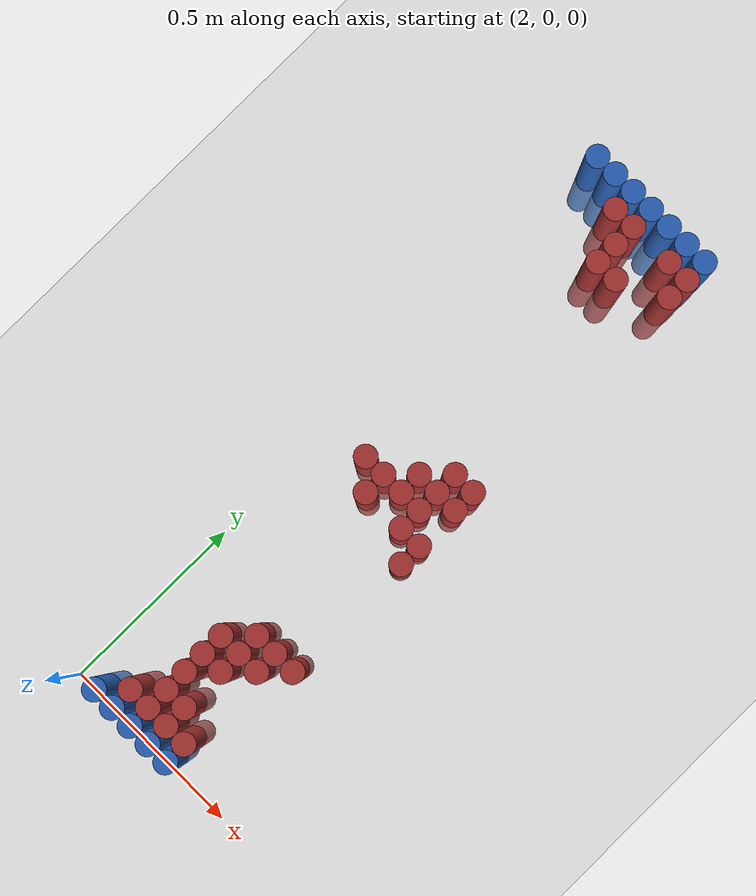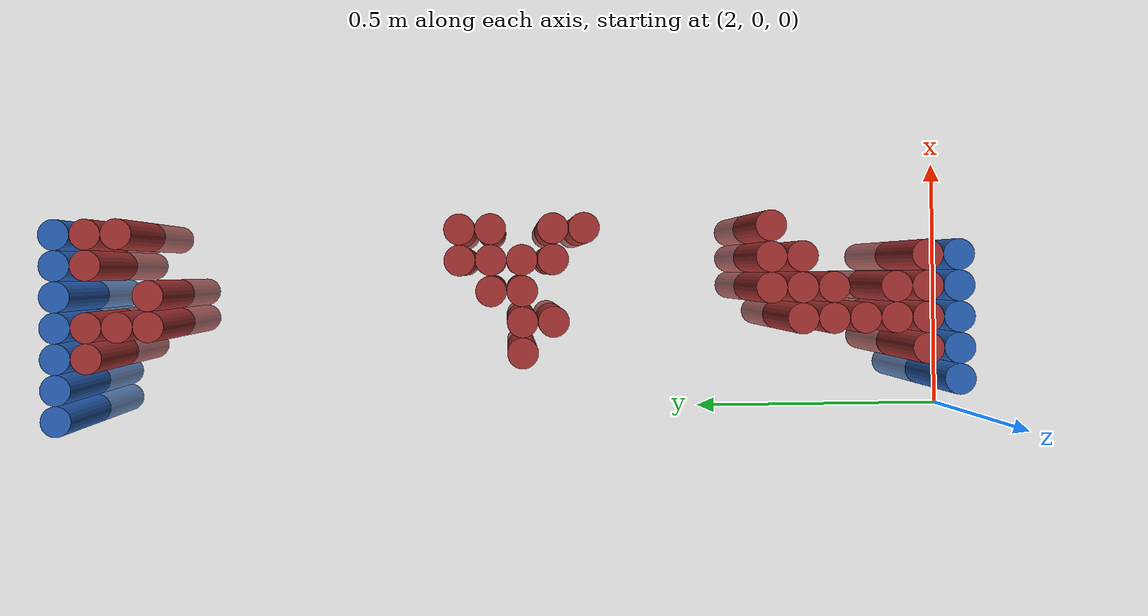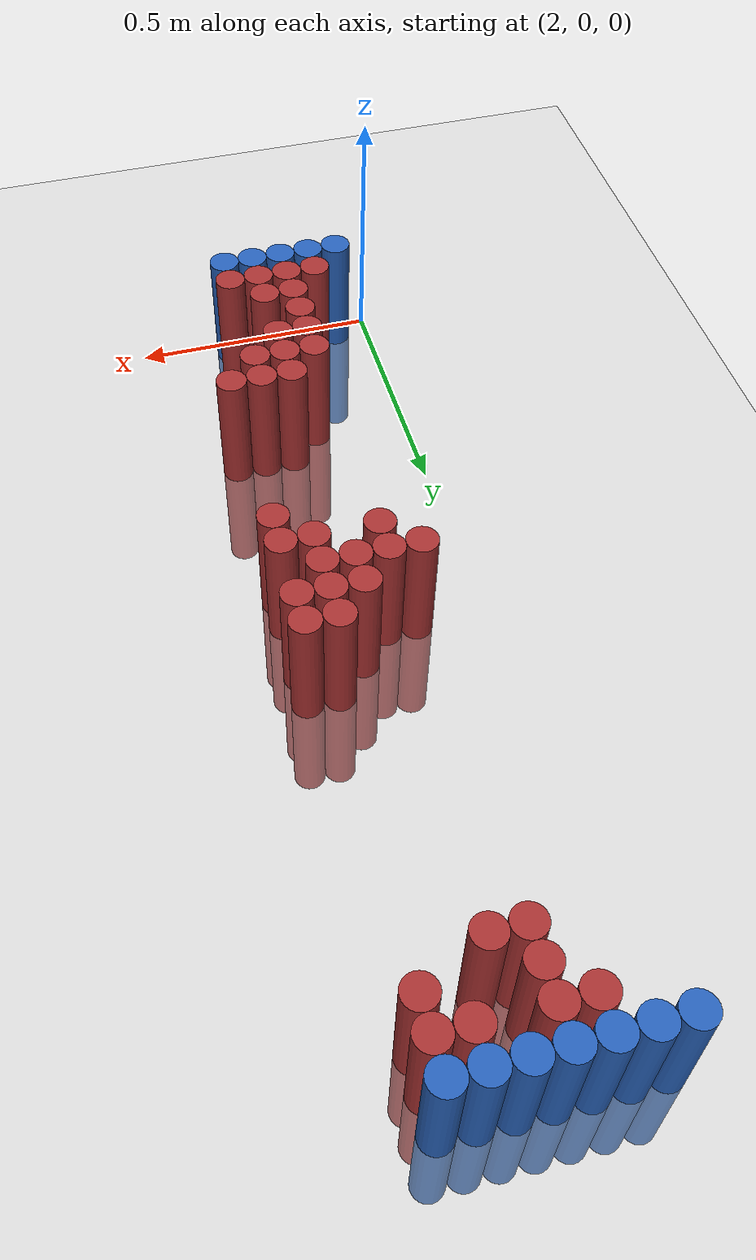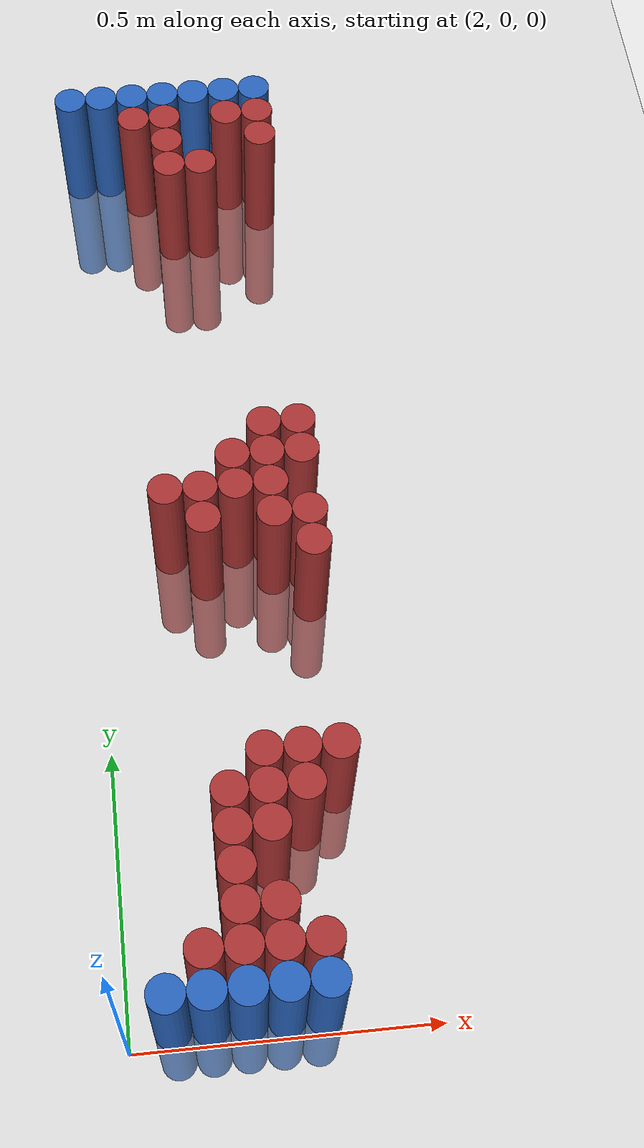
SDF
<sdf version="1.6">
 <world name="default">
  <model name="ground_plane">
   <static>1</static>
   <link name="link">
    <collision name="collision">
     <geometry><plane><normal>0 0 1</normal><size>100 100</size></plane></geometry>
     <surface><friction><ode><mu>100</mu><mu2>50</mu2></ode></friction></surface>
    </collision>
    <visual name="visual">
     <cast_shadows>0</cast_shadows>
     <geometry><plane><normal>0 0 1</normal><size>100 100</size></plane></geometry>
     <material>
      <script><uri>file://media/materials/scripts/gazebo.material</uri><name>Gazebo/Grey</name></script>
     </material>
    </visual>
   </link>
  </model>
  <model name="unit_cylinder_94">
   <static>1</static>
   <pose>2.010000 1.770000 0.000000 0.000000 0.000000 0.000000</pose>
   <link name="link">
    <inertial>
     <mass>1</mass>
     <inertia><ixx>0.145833</ixx><ixy>0</ixy><ixz>0</ixz><iyy>0.145833</iyy><iyz>0</iyz><izz>0.125</izz></inertia>
    </inertial>
    <collision name="collision">
     <geometry><cylinder><radius>0.030000</radius><length>0.5</length></cylinder></geometry>
    </collision>
    <visual name="visual">
     <geometry><cylinder><radius>0.030000</radius><length>0.5</length></cylinder></geometry>
     <material>
      <ambient>0.152000 0.379000 0.720000 1</ambient>
      <diffuse>0.152000 0.379000 0.720000 1</diffuse>
     </material>
     <material>
      <script><name>Gazebo/Grey</name><uri>file://media/materials/scripts/gazebo.material</uri></script>
     </material>
    </visual>
   </link>
  </model>
  <model name="unit_cylinder_95">
   <static>1</static>
   <pose>2.070000 1.770000 0.000000 0.000000 0.000000 0.000000</pose>
   <link name="link">
    <inertial>
     <mass>1</mass>
     <inertia><ixx>0.145833</ixx><ixy>0</ixy><ixz>0</ixz><iyy>0.145833</iyy><iyz>0</iyz><izz>0.125</izz></inertia>
    </inertial>
    <collision name="collision">
     <geometry><cylinder><radius>0.030000</radius><length>0.5</length></cylinder></geometry>
    </collision>
    <visual name="visual">
     <geometry><cylinder><radius>0.030000</radius><length>0.5</length></cylinder></geometry>
     <material>
      <ambient>0.152000 0.379000 0.720000 1</ambient>
      <diffuse>0.152000 0.379000 0.720000 1</diffuse>
     </material>
     <material>
      <script><name>Gazebo/Grey</name><uri>file://media/materials/scripts/gazebo.material</uri></script>
     </material>
    </visual>
   </link>
  </model>
  <model name="unit_cylinder_96">
   <static>1</static>
   <pose>2.130000 1.770000 0.000000 0.000000 0.000000 0.000000</pose>
   <link name="link">
    <inertial>
     <mass>1</mass>
     <inertia><ixx>0.145833</ixx><ixy>0</ixy><ixz>0</ixz><iyy>0.145833</iyy><iyz>0</iyz><izz>0.125</izz></inertia>
    </inertial>
    <collision name="collision">
     <geometry><cylinder><radius>0.030000</radius><length>0.5</length></cylinder></geometry>
    </collision>
    <visual name="visual">
     <geometry><cylinder><radius>0.030000</radius><length>0.5</length></cylinder></geometry>
     <material>
      <ambient>0.152000 0.379000 0.720000 1</ambient>
      <diffuse>0.152000 0.379000 0.720000 1</diffuse>
     </material>
     <material>
      <script><name>Gazebo/Grey</name><uri>file://media/materials/scripts/gazebo.material</uri></script>
     </material>
    </visual>
   </link>
  </model>
  <model name="unit_cylinder_97">
   <static>1</static>
   <pose>2.190000 1.770000 0.000000 0.000000 0.000000 0.000000</pose>
   <link name="link">
    <inertial>
     <mass>1</mass>
     <inertia><ixx>0.145833</ixx><ixy>0</ixy><ixz>0</ixz><iyy>0.145833</iyy><iyz>0</iyz><izz>0.125</izz></inertia>
    </inertial>
    <collision name="collision">
     <geometry><cylinder><radius>0.030000</radius><length>0.5</length></cylinder></geometry>
    </collision>
    <visual name="visual">
     <geometry><cylinder><radius>0.030000</radius><length>0.5</length></cylinder></geometry>
     <material>
      <ambient>0.152000 0.379000 0.720000 1</ambient>
      <diffuse>0.152000 0.379000 0.720000 1</diffuse>
     </material>
     <material>
      <script><name>Gazebo/Grey</name><uri>file://media/materials/scripts/gazebo.material</uri></script>
     </material>
    </visual>
   </link>
  </model>
  <model name="unit_cylinder_98">
   <static>1</static>
   <pose>2.250000 1.770000 0.000000 0.000000 0.000000 0.000000</pose>
   <link name="link">
    <inertial>
     <mass>1</mass>
     <inertia><ixx>0.145833</ixx><ixy>0</ixy><ixz>0</ixz><iyy>0.145833</iyy><iyz>0</iyz><izz>0.125</izz></inertia>
    </inertial>
    <collision name="collision">
     <geometry><cylinder><radius>0.030000</radius><length>0.5</length></cylinder></geometry>
    </collision>
    <visual name="visual">
     <geometry><cylinder><radius>0.030000</radius><length>0.5</length></cylinder></geometry>
     <material>
      <ambient>0.152000 0.379000 0.720000 1</ambient>
      <diffuse>0.152000 0.379000 0.720000 1</diffuse>
     </material>
     <material>
      <script><name>Gazebo/Grey</name><uri>file://media/materials/scripts/gazebo.material</uri></script>
     </material>
    </visual>
   </link>
  </model>
  <model name="unit_cylinder_99">
   <static>1</static>
   <pose>2.310000 1.770000 0.000000 0.000000 0.000000 0.000000</pose>
   <link name="link">
    <inertial>
     <mass>1</mass>
     <inertia><ixx>0.145833</ixx><ixy>0</ixy><ixz>0</ixz><iyy>0.145833</iyy><iyz>0</iyz><izz>0.125</izz></inertia>
    </inertial>
    <collision name="collision">
     <geometry><cylinder><radius>0.030000</radius><length>0.5</length></cylinder></geometry>
    </collision>
    <visual name="visual">
     <geometry><cylinder><radius>0.030000</radius><length>0.5</length></cylinder></geometry>
     <material>
      <ambient>0.152000 0.379000 0.720000 1</ambient>
      <diffuse>0.152000 0.379000 0.720000 1</diffuse>
     </material>
     <material>
      <script><name>Gazebo/Grey</name><uri>file://media/materials/scripts/gazebo.material</uri></script>
     </material>
    </visual>
   </link>
  </model>
  <model name="unit_cylinder_100">
   <static>1</static>
   <pose>2.370000 1.770000 0.000000 0.000000 0.000000 0.000000</pose>
   <link name="link">
    <inertial>
     <mass>1</mass>
     <inertia><ixx>0.145833</ixx><ixy>0</ixy><ixz>0</ixz><iyy>0.145833</iyy><iyz>0</iyz><izz>0.125</izz></inertia>
    </inertial>
    <collision name="collision">
     <geometry><cylinder><radius>0.030000</radius><length>0.5</length></cylinder></geometry>
    </collision>
    <visual name="visual">
     <geometry><cylinder><radius>0.030000</radius><length>0.5</length></cylinder></geometry>
     <material>
      <ambient>0.152000 0.379000 0.720000 1</ambient>
      <diffuse>0.152000 0.379000 0.720000 1</diffuse>
     </material>
     <material>
      <script><name>Gazebo/Grey</name><uri>file://media/materials/scripts/gazebo.material</uri></script>
     </material>
    </visual>
   </link>
  </model>
  <model name="unit_cylinder_125">
   <static>1</static>
   <pose>2.130000 1.710000 0.000000 0.000000 0.000000 0.000000</pose>
   <link name="link">
    <inertial>
     <mass>1</mass>
     <inertia><ixx>0.145833</ixx><ixy>0</ixy><ixz>0</ixz><iyy>0.145833</iyy><iyz>0</iyz><izz>0.125</izz></inertia>
    </inertial>
    <collision name="collision">
     <geometry><cylinder><radius>0.030000</radius><length>0.5</length></cylinder></geometry>
    </collision>
    <visual name="visual">
     <geometry><cylinder><radius>0.030000</radius><length>0.5</length></cylinder></geometry>
     <material>
      <ambient>0.648000 0.192000 0.192000 1</ambient>
      <diffuse>0.648000 0.192000 0.192000 1</diffuse>
     </material>
     <material>
      <script><name>Gazebo/Grey</name><uri>file://media/materials/scripts/gazebo.material</uri></script>
     </material>
    </visual>
   </link>
  </model>
  <model name="unit_cylinder_126">
   <static>1</static>
   <pose>2.190000 1.710000 0.000000 0.000000 0.000000 0.000000</pose>
   <link name="link">
    <inertial>
     <mass>1</mass>
     <inertia><ixx>0.145833</ixx><ixy>0</ixy><ixz>0</ixz><iyy>0.145833</iyy><iyz>0</iyz><izz>0.125</izz></inertia>
    </inertial>
    <collision name="collision">
     <geometry><cylinder><radius>0.030000</radius><length>0.5</length></cylinder></geometry>
    </collision>
    <visual name="visual">
     <geometry><cylinder><radius>0.030000</radius><length>0.5</length></cylinder></geometry>
     <material>
      <ambient>0.648000 0.192000 0.192000 1</ambient>
      <diffuse>0.648000 0.192000 0.192000 1</diffuse>
     </material>
     <material>
      <script><name>Gazebo/Grey</name><uri>file://media/materials/scripts/gazebo.material</uri></script>
     </material>
    </visual>
   </link>
  </model>
  <model name="unit_cylinder_127">
   <static>1</static>
   <pose>2.310000 1.710000 0.000000 0.000000 0.000000 0.000000</pose>
   <link name="link">
    <inertial>
     <mass>1</mass>
     <inertia><ixx>0.145833</ixx><ixy>0</ixy><ixz>0</ixz><iyy>0.145833</iyy><iyz>0</iyz><izz>0.125</izz></inertia>
    </inertial>
    <collision name="collision">
     <geometry><cylinder><radius>0.030000</radius><length>0.5</length></cylinder></geometry>
    </collision>
    <visual name="visual">
     <geometry><cylinder><radius>0.030000</radius><length>0.5</length></cylinder></geometry>
     <material>
      <ambient>0.648000 0.192000 0.192000 1</ambient>
      <diffuse>0.648000 0.192000 0.192000 1</diffuse>
     </material>
     <material>
      <script><name>Gazebo/Grey</name><uri>file://media/materials/scripts/gazebo.material</uri></script>
     </material>
    </visual>
   </link>
  </model>
  <model name="unit_cylinder_128">
   <static>1</static>
   <pose>2.370000 1.710000 0.000000 0.000000 0.000000 0.000000</pose>
   <link name="link">
    <inertial>
     <mass>1</mass>
     <inertia><ixx>0.145833</ixx><ixy>0</ixy><ixz>0</ixz><iyy>0.145833</iyy><iyz>0</iyz><izz>0.125</izz></inertia>
    </inertial>
    <collision name="collision">
     <geometry><cylinder><radius>0.030000</radius><length>0.5</length></cylinder></geometry>
    </collision>
    <visual name="visual">
     <geometry><cylinder><radius>0.030000</radius><length>0.5</length></cylinder></geometry>
     <material>
      <ambient>0.648000 0.192000 0.192000 1</ambient>
      <diffuse>0.648000 0.192000 0.192000 1</diffuse>
     </material>
     <material>
      <script><name>Gazebo/Grey</name><uri>file://media/materials/scripts/gazebo.material</uri></script>
     </material>
    </visual>
   </link>
  </model>
  <model name="unit_cylinder_135">
   <static>1</static>
   <pose>2.190000 1.650000 0.000000 0.000000 0.000000 0.000000</pose>
   <link name="link">
    <inertial>
     <mass>1</mass>
     <inertia><ixx>0.145833</ixx><ixy>0</ixy><ixz>0</ixz><iyy>0.145833</iyy><iyz>0</iyz><izz>0.125</izz></inertia>
    </inertial>
    <collision name="collision">
     <geometry><cylinder><radius>0.030000</radius><length>0.5</length></cylinder></geometry>
    </collision>
    <visual name="visual">
     <geometry><cylinder><radius>0.030000</radius><length>0.5</length></cylinder></geometry>
     <material>
      <ambient>0.648000 0.192000 0.192000 1</ambient>
      <diffuse>0.648000 0.192000 0.192000 1</diffuse>
     </material>
     <material>
      <script><name>Gazebo/Grey</name><uri>file://media/materials/scripts/gazebo.material</uri></script>
     </material>
    </visual>
   </link>
  </model>
  <model name="unit_cylinder_136">
   <static>1</static>
   <pose>2.370000 1.650000 0.000000 0.000000 0.000000 0.000000</pose>
   <link name="link">
    <inertial>
     <mass>1</mass>
     <inertia><ixx>0.145833</ixx><ixy>0</ixy><ixz>0</ixz><iyy>0.145833</iyy><iyz>0</iyz><izz>0.125</izz></inertia>
    </inertial>
    <collision name="collision">
     <geometry><cylinder><radius>0.030000</radius><length>0.5</length></cylinder></geometry>
    </collision>
    <visual name="visual">
     <geometry><cylinder><radius>0.030000</radius><length>0.5</length></cylinder></geometry>
     <material>
      <ambient>0.648000 0.192000 0.192000 1</ambient>
      <diffuse>0.648000 0.192000 0.192000 1</diffuse>
     </material>
     <material>
      <script><name>Gazebo/Grey</name><uri>file://media/materials/scripts/gazebo.material</uri></script>
     </material>
    </visual>
   </link>
  </model>
  <model name="unit_cylinder_150">
   <static>1</static>
   <pose>2.190000 1.590000 0.000000 0.000000 0.000000 0.000000</pose>
   <link name="link">
    <inertial>
     <mass>1</mass>
     <inertia><ixx>0.145833</ixx><ixy>0</ixy><ixz>0</ixz><iyy>0.145833</iyy><iyz>0</iyz><izz>0.125</izz></inertia>
    </inertial>
    <collision name="collision">
     <geometry><cylinder><radius>0.030000</radius><length>0.5</length></cylinder></geometry>
    </collision>
    <visual name="visual">
     <geometry><cylinder><radius>0.030000</radius><length>0.5</length></cylinder></geometry>
     <material>
      <ambient>0.648000 0.192000 0.192000 1</ambient>
      <diffuse>0.648000 0.192000 0.192000 1</diffuse>
     </material>
     <material>
      <script><name>Gazebo/Grey</name><uri>file://media/materials/scripts/gazebo.material</uri></script>
     </material>
    </visual>
   </link>
  </model>
  <model name="unit_cylinder_151">
   <static>1</static>
   <pose>2.250000 1.590000 0.000000 0.000000 0.000000 0.000000</pose>
   <link name="link">
    <inertial>
     <mass>1</mass>
     <inertia><ixx>0.145833</ixx><ixy>0</ixy><ixz>0</ixz><iyy>0.145833</iyy><iyz>0</iyz><izz>0.125</izz></inertia>
    </inertial>
    <collision name="collision">
     <geometry><cylinder><radius>0.030000</radius><length>0.5</length></cylinder></geometry>
    </collision>
    <visual name="visual">
     <geometry><cylinder><radius>0.030000</radius><length>0.5</length></cylinder></geometry>
     <material>
      <ambient>0.648000 0.192000 0.192000 1</ambient>
      <diffuse>0.648000 0.192000 0.192000 1</diffuse>
     </material>
     <material>
      <script><name>Gazebo/Grey</name><uri>file://media/materials/scripts/gazebo.material</uri></script>
     </material>
    </visual>
   </link>
  </model>
  <model name="unit_cylinder_217">
   <static>1</static>
   <pose>2.310000 0.990000 0.000000 0.000000 0.000000 0.000000</pose>
   <link name="link">
    <inertial>
     <mass>1</mass>
     <inertia><ixx>0.145833</ixx><ixy>0</ixy><ixz>0</ixz><iyy>0.145833</iyy><iyz>0</iyz><izz>0.125</izz></inertia>
    </inertial>
    <collision name="collision">
     <geometry><cylinder><radius>0.030000</radius><length>0.5</length></cylinder></geometry>
    </collision>
    <visual name="visual">
     <geometry><cylinder><radius>0.030000</radius><length>0.5</length></cylinder></geometry>
     <material>
      <ambient>0.648000 0.192000 0.192000 1</ambient>
      <diffuse>0.648000 0.192000 0.192000 1</diffuse>
     </material>
     <material>
      <script><name>Gazebo/Grey</name><uri>file://media/materials/scripts/gazebo.material</uri></script>
     </material>
    </visual>
   </link>
  </model>
  <model name="unit_cylinder_218">
   <static>1</static>
   <pose>2.370000 0.990000 0.000000 0.000000 0.000000 0.000000</pose>
   <link name="link">
    <inertial>
     <mass>1</mass>
     <inertia><ixx>0.145833</ixx><ixy>0</ixy><ixz>0</ixz><iyy>0.145833</iyy><iyz>0</iyz><izz>0.125</izz></inertia>
    </inertial>
    <collision name="collision">
     <geometry><cylinder><radius>0.030000</radius><length>0.5</length></cylinder></geometry>
    </collision>
    <visual name="visual">
     <geometry><cylinder><radius>0.030000</radius><length>0.5</length></cylinder></geometry>
     <material>
      <ambient>0.648000 0.192000 0.192000 1</ambient>
      <diffuse>0.648000 0.192000 0.192000 1</diffuse>
     </material>
     <material>
      <script><name>Gazebo/Grey</name><uri>file://media/materials/scripts/gazebo.material</uri></script>
     </material>
    </visual>
   </link>
  </model>
  <model name="unit_cylinder_222">
   <static>1</static>
   <pose>2.250000 0.930000 0.000000 0.000000 0.000000 0.000000</pose>
   <link name="link">
    <inertial>
     <mass>1</mass>
     <inertia><ixx>0.145833</ixx><ixy>0</ixy><ixz>0</ixz><iyy>0.145833</iyy><iyz>0</iyz><izz>0.125</izz></inertia>
    </inertial>
    <collision name="collision">
     <geometry><cylinder><radius>0.030000</radius><length>0.5</length></cylinder></geometry>
    </collision>
    <visual name="visual">
     <geometry><cylinder><radius>0.030000</radius><length>0.5</length></cylinder></geometry>
     <material>
      <ambient>0.648000 0.192000 0.192000 1</ambient>
      <diffuse>0.648000 0.192000 0.192000 1</diffuse>
     </material>
     <material>
      <script><name>Gazebo/Grey</name><uri>file://media/materials/scripts/gazebo.material</uri></script>
     </material>
    </visual>
   </link>
  </model>
  <model name="unit_cylinder_223">
   <static>1</static>
   <pose>2.310000 0.930000 0.000000 0.000000 0.000000 0.000000</pose>
   <link name="link">
    <inertial>
     <mass>1</mass>
     <inertia><ixx>0.145833</ixx><ixy>0</ixy><ixz>0</ixz><iyy>0.145833</iyy><iyz>0</iyz><izz>0.125</izz></inertia>
    </inertial>
    <collision name="collision">
     <geometry><cylinder><radius>0.030000</radius><length>0.5</length></cylinder></geometry>
    </collision>
    <visual name="visual">
     <geometry><cylinder><radius>0.030000</radius><length>0.5</length></cylinder></geometry>
     <material>
      <ambient>0.648000 0.192000 0.192000 1</ambient>
      <diffuse>0.648000 0.192000 0.192000 1</diffuse>
     </material>
     <material>
      <script><name>Gazebo/Grey</name><uri>file://media/materials/scripts/gazebo.material</uri></script>
     </material>
    </visual>
   </link>
  </model>
  <model name="unit_cylinder_224">
   <static>1</static>
   <pose>2.370000 0.930000 0.000000 0.000000 0.000000 0.000000</pose>
   <link name="link">
    <inertial>
     <mass>1</mass>
     <inertia><ixx>0.145833</ixx><ixy>0</ixy><ixz>0</ixz><iyy>0.145833</iyy><iyz>0</iyz><izz>0.125</izz></inertia>
    </inertial>
    <collision name="collision">
     <geometry><cylinder><radius>0.030000</radius><length>0.5</length></cylinder></geometry>
    </collision>
    <visual name="visual">
     <geometry><cylinder><radius>0.030000</radius><length>0.5</length></cylinder></geometry>
     <material>
      <ambient>0.648000 0.192000 0.192000 1</ambient>
      <diffuse>0.648000 0.192000 0.192000 1</diffuse>
     </material>
     <material>
      <script><name>Gazebo/Grey</name><uri>file://media/materials/scripts/gazebo.material</uri></script>
     </material>
    </visual>
   </link>
  </model>
  <model name="unit_cylinder_230">
   <static>1</static>
   <pose>2.130000 0.870000 0.000000 0.000000 0.000000 0.000000</pose>
   <link name="link">
    <inertial>
     <mass>1</mass>
     <inertia><ixx>0.145833</ixx><ixy>0</ixy><ixz>0</ixz><iyy>0.145833</iyy><iyz>0</iyz><izz>0.125</izz></inertia>
    </inertial>
    <collision name="collision">
     <geometry><cylinder><radius>0.030000</radius><length>0.5</length></cylinder></geometry>
    </collision>
    <visual name="visual">
     <geometry><cylinder><radius>0.030000</radius><length>0.5</length></cylinder></geometry>
     <material>
      <ambient>0.648000 0.192000 0.192000 1</ambient>
      <diffuse>0.648000 0.192000 0.192000 1</diffuse>
     </material>
     <material>
      <script><name>Gazebo/Grey</name><uri>file://media/materials/scripts/gazebo.material</uri></script>
     </material>
    </visual>
   </link>
  </model>
  <model name="unit_cylinder_231">
   <static>1</static>
   <pose>2.190000 0.870000 0.000000 0.000000 0.000000 0.000000</pose>
   <link name="link">
    <inertial>
     <mass>1</mass>
     <inertia><ixx>0.145833</ixx><ixy>0</ixy><ixz>0</ixz><iyy>0.145833</iyy><iyz>0</iyz><izz>0.125</izz></inertia>
    </inertial>
    <collision name="collision">
     <geometry><cylinder><radius>0.030000</radius><length>0.5</length></cylinder></geometry>
    </collision>
    <visual name="visual">
     <geometry><cylinder><radius>0.030000</radius><length>0.5</length></cylinder></geometry>
     <material>
      <ambient>0.648000 0.192000 0.192000 1</ambient>
      <diffuse>0.648000 0.192000 0.192000 1</diffuse>
     </material>
     <material>
      <script><name>Gazebo/Grey</name><uri>file://media/materials/scripts/gazebo.material</uri></script>
     </material>
    </visual>
   </link>
  </model>
  <model name="unit_cylinder_232">
   <static>1</static>
   <pose>2.250000 0.870000 0.000000 0.000000 0.000000 0.000000</pose>
   <link name="link">
    <inertial>
     <mass>1</mass>
     <inertia><ixx>0.145833</ixx><ixy>0</ixy><ixz>0</ixz><iyy>0.145833</iyy><iyz>0</iyz><izz>0.125</izz></inertia>
    </inertial>
    <collision name="collision">
     <geometry><cylinder><radius>0.030000</radius><length>0.5</length></cylinder></geometry>
    </collision>
    <visual name="visual">
     <geometry><cylinder><radius>0.030000</radius><length>0.5</length></cylinder></geometry>
     <material>
      <ambient>0.648000 0.192000 0.192000 1</ambient>
      <diffuse>0.648000 0.192000 0.192000 1</diffuse>
     </material>
     <material>
      <script><name>Gazebo/Grey</name><uri>file://media/materials/scripts/gazebo.material</uri></script>
     </material>
    </visual>
   </link>
  </model>
  <model name="unit_cylinder_233">
   <static>1</static>
   <pose>2.310000 0.870000 0.000000 0.000000 0.000000 0.000000</pose>
   <link name="link">
    <inertial>
     <mass>1</mass>
     <inertia><ixx>0.145833</ixx><ixy>0</ixy><ixz>0</ixz><iyy>0.145833</iyy><iyz>0</iyz><izz>0.125</izz></inertia>
    </inertial>
    <collision name="collision">
     <geometry><cylinder><radius>0.030000</radius><length>0.5</length></cylinder></geometry>
    </collision>
    <visual name="visual">
     <geometry><cylinder><radius>0.030000</radius><length>0.5</length></cylinder></geometry>
     <material>
      <ambient>0.648000 0.192000 0.192000 1</ambient>
      <diffuse>0.648000 0.192000 0.192000 1</diffuse>
     </material>
     <material>
      <script><name>Gazebo/Grey</name><uri>file://media/materials/scripts/gazebo.material</uri></script>
     </material>
    </visual>
   </link>
  </model>
  <model name="unit_cylinder_237">
   <static>1</static>
   <pose>2.190000 0.810000 0.000000 0.000000 0.000000 0.000000</pose>
   <link name="link">
    <inertial>
     <mass>1</mass>
     <inertia><ixx>0.145833</ixx><ixy>0</ixy><ixz>0</ixz><iyy>0.145833</iyy><iyz>0</iyz><izz>0.125</izz></inertia>
    </inertial>
    <collision name="collision">
     <geometry><cylinder><radius>0.030000</radius><length>0.5</length></cylinder></geometry>
    </collision>
    <visual name="visual">
     <geometry><cylinder><radius>0.030000</radius><length>0.5</length></cylinder></geometry>
     <material>
      <ambient>0.648000 0.192000 0.192000 1</ambient>
      <diffuse>0.648000 0.192000 0.192000 1</diffuse>
     </material>
     <material>
      <script><name>Gazebo/Grey</name><uri>file://media/materials/scripts/gazebo.material</uri></script>
     </material>
    </visual>
   </link>
  </model>
  <model name="unit_cylinder_238">
   <static>1</static>
   <pose>2.310000 0.810000 0.000000 0.000000 0.000000 0.000000</pose>
   <link name="link">
    <inertial>
     <mass>1</mass>
     <inertia><ixx>0.145833</ixx><ixy>0</ixy><ixz>0</ixz><iyy>0.145833</iyy><iyz>0</iyz><izz>0.125</izz></inertia>
    </inertial>
    <collision name="collision">
     <geometry><cylinder><radius>0.030000</radius><length>0.5</length></cylinder></geometry>
    </collision>
    <visual name="visual">
     <geometry><cylinder><radius>0.030000</radius><length>0.5</length></cylinder></geometry>
     <material>
      <ambient>0.648000 0.192000 0.192000 1</ambient>
      <diffuse>0.648000 0.192000 0.192000 1</diffuse>
     </material>
     <material>
      <script><name>Gazebo/Grey</name><uri>file://media/materials/scripts/gazebo.material</uri></script>
     </material>
    </visual>
   </link>
  </model>
  <model name="unit_cylinder_239">
   <static>1</static>
   <pose>2.370000 0.810000 0.000000 0.000000 0.000000 0.000000</pose>
   <link name="link">
    <inertial>
     <mass>1</mass>
     <inertia><ixx>0.145833</ixx><ixy>0</ixy><ixz>0</ixz><iyy>0.145833</iyy><iyz>0</iyz><izz>0.125</izz></inertia>
    </inertial>
    <collision name="collision">
     <geometry><cylinder><radius>0.030000</radius><length>0.5</length></cylinder></geometry>
    </collision>
    <visual name="visual">
     <geometry><cylinder><radius>0.030000</radius><length>0.5</length></cylinder></geometry>
     <material>
      <ambient>0.648000 0.192000 0.192000 1</ambient>
      <diffuse>0.648000 0.192000 0.192000 1</diffuse>
     </material>
     <material>
      <script><name>Gazebo/Grey</name><uri>file://media/materials/scripts/gazebo.material</uri></script>
     </material>
    </visual>
   </link>
  </model>
  <model name="unit_cylinder_242">
   <static>1</static>
   <pose>2.370000 0.750000 0.000000 0.000000 0.000000 0.000000</pose>
   <link name="link">
    <inertial>
     <mass>1</mass>
     <inertia><ixx>0.145833</ixx><ixy>0</ixy><ixz>0</ixz><iyy>0.145833</iyy><iyz>0</iyz><izz>0.125</izz></inertia>
    </inertial>
    <collision name="collision">
     <geometry><cylinder><radius>0.030000</radius><length>0.5</length></cylinder></geometry>
    </collision>
    <visual name="visual">
     <geometry><cylinder><radius>0.030000</radius><length>0.5</length></cylinder></geometry>
     <material>
      <ambient>0.648000 0.192000 0.192000 1</ambient>
      <diffuse>0.648000 0.192000 0.192000 1</diffuse>
     </material>
     <material>
      <script><name>Gazebo/Grey</name><uri>file://media/materials/scripts/gazebo.material</uri></script>
     </material>
    </visual>
   </link>
  </model>
  <model name="unit_cylinder_263">
   <static>1</static>
   <pose>2.250000 0.390000 0.000000 0.000000 0.000000 0.000000</pose>
   <link name="link">
    <inertial>
     <mass>1</mass>
     <inertia><ixx>0.145833</ixx><ixy>0</ixy><ixz>0</ixz><iyy>0.145833</iyy><iyz>0</iyz><izz>0.125</izz></inertia>
    </inertial>
    <collision name="collision">
     <geometry><cylinder><radius>0.030000</radius><length>0.5</length></cylinder></geometry>
    </collision>
    <visual name="visual">
     <geometry><cylinder><radius>0.030000</radius><length>0.5</length></cylinder></geometry>
     <material>
      <ambient>0.648000 0.192000 0.192000 1</ambient>
      <diffuse>0.648000 0.192000 0.192000 1</diffuse>
     </material>
     <material>
      <script><name>Gazebo/Grey</name><uri>file://media/materials/scripts/gazebo.material</uri></script>
     </material>
    </visual>
   </link>
  </model>
  <model name="unit_cylinder_264">
   <static>1</static>
   <pose>2.310000 0.390000 0.000000 0.000000 0.000000 0.000000</pose>
   <link name="link">
    <inertial>
     <mass>1</mass>
     <inertia><ixx>0.145833</ixx><ixy>0</ixy><ixz>0</ixz><iyy>0.145833</iyy><iyz>0</iyz><izz>0.125</izz></inertia>
    </inertial>
    <collision name="collision">
     <geometry><cylinder><radius>0.030000</radius><length>0.5</length></cylinder></geometry>
    </collision>
    <visual name="visual">
     <geometry><cylinder><radius>0.030000</radius><length>0.5</length></cylinder></geometry>
     <material>
      <ambient>0.648000 0.192000 0.192000 1</ambient>
      <diffuse>0.648000 0.192000 0.192000 1</diffuse>
     </material>
     <material>
      <script><name>Gazebo/Grey</name><uri>file://media/materials/scripts/gazebo.material</uri></script>
     </material>
    </visual>
   </link>
  </model>
  <model name="unit_cylinder_265">
   <static>1</static>
   <pose>2.370000 0.390000 0.000000 0.000000 0.000000 0.000000</pose>
   <link name="link">
    <inertial>
     <mass>1</mass>
     <inertia><ixx>0.145833</ixx><ixy>0</ixy><ixz>0</ixz><iyy>0.145833</iyy><iyz>0</iyz><izz>0.125</izz></inertia>
    </inertial>
    <collision name="collision">
     <geometry><cylinder><radius>0.030000</radius><length>0.5</length></cylinder></geometry>
    </collision>
    <visual name="visual">
     <geometry><cylinder><radius>0.030000</radius><length>0.5</length></cylinder></geometry>
     <material>
      <ambient>0.648000 0.192000 0.192000 1</ambient>
      <diffuse>0.648000 0.192000 0.192000 1</diffuse>
     </material>
     <material>
      <script><name>Gazebo/Grey</name><uri>file://media/materials/scripts/gazebo.material</uri></script>
     </material>
    </visual>
   </link>
  </model>
  <model name="unit_cylinder_269">
   <static>1</static>
   <pose>2.190000 0.330000 0.000000 0.000000 0.000000 0.000000</pose>
   <link name="link">
    <inertial>
     <mass>1</mass>
     <inertia><ixx>0.145833</ixx><ixy>0</ixy><ixz>0</ixz><iyy>0.145833</iyy><iyz>0</iyz><izz>0.125</izz></inertia>
    </inertial>
    <collision name="collision">
     <geometry><cylinder><radius>0.030000</radius><length>0.5</length></cylinder></geometry>
    </collision>
    <visual name="visual">
     <geometry><cylinder><radius>0.030000</radius><length>0.5</length></cylinder></geometry>
     <material>
      <ambient>0.648000 0.192000 0.192000 1</ambient>
      <diffuse>0.648000 0.192000 0.192000 1</diffuse>
     </material>
     <material>
      <script><name>Gazebo/Grey</name><uri>file://media/materials/scripts/gazebo.material</uri></script>
     </material>
    </visual>
   </link>
  </model>
  <model name="unit_cylinder_270">
   <static>1</static>
   <pose>2.250000 0.330000 0.000000 0.000000 0.000000 0.000000</pose>
   <link name="link">
    <inertial>
     <mass>1</mass>
     <inertia><ixx>0.145833</ixx><ixy>0</ixy><ixz>0</ixz><iyy>0.145833</iyy><iyz>0</iyz><izz>0.125</izz></inertia>
    </inertial>
    <collision name="collision">
     <geometry><cylinder><radius>0.030000</radius><length>0.5</length></cylinder></geometry>
    </collision>
    <visual name="visual">
     <geometry><cylinder><radius>0.030000</radius><length>0.5</length></cylinder></geometry>
     <material>
      <ambient>0.648000 0.192000 0.192000 1</ambient>
      <diffuse>0.648000 0.192000 0.192000 1</diffuse>
     </material>
     <material>
      <script><name>Gazebo/Grey</name><uri>file://media/materials/scripts/gazebo.material</uri></script>
     </material>
    </visual>
   </link>
  </model>
  <model name="unit_cylinder_271">
   <static>1</static>
   <pose>2.310000 0.330000 0.000000 0.000000 0.000000 0.000000</pose>
   <link name="link">
    <inertial>
     <mass>1</mass>
     <inertia><ixx>0.145833</ixx><ixy>0</ixy><ixz>0</ixz><iyy>0.145833</iyy><iyz>0</iyz><izz>0.125</izz></inertia>
    </inertial>
    <collision name="collision">
     <geometry><cylinder><radius>0.030000</radius><length>0.5</length></cylinder></geometry>
    </collision>
    <visual name="visual">
     <geometry><cylinder><radius>0.030000</radius><length>0.5</length></cylinder></geometry>
     <material>
      <ambient>0.648000 0.192000 0.192000 1</ambient>
      <diffuse>0.648000 0.192000 0.192000 1</diffuse>
     </material>
     <material>
      <script><name>Gazebo/Grey</name><uri>file://media/materials/scripts/gazebo.material</uri></script>
     </material>
    </visual>
   </link>
  </model>
  <model name="unit_cylinder_277">
   <static>1</static>
   <pose>2.190000 0.270000 0.000000 0.000000 0.000000 0.000000</pose>
   <link name="link">
    <inertial>
     <mass>1</mass>
     <inertia><ixx>0.145833</ixx><ixy>0</ixy><ixz>0</ixz><iyy>0.145833</iyy><iyz>0</iyz><izz>0.125</izz></inertia>
    </inertial>
    <collision name="collision">
     <geometry><cylinder><radius>0.030000</radius><length>0.5</length></cylinder></geometry>
    </collision>
    <visual name="visual">
     <geometry><cylinder><radius>0.030000</radius><length>0.5</length></cylinder></geometry>
     <material>
      <ambient>0.648000 0.192000 0.192000 1</ambient>
      <diffuse>0.648000 0.192000 0.192000 1</diffuse>
     </material>
     <material>
      <script><name>Gazebo/Grey</name><uri>file://media/materials/scripts/gazebo.material</uri></script>
     </material>
    </visual>
   </link>
  </model>
  <model name="unit_cylinder_278">
   <static>1</static>
   <pose>2.250000 0.270000 0.000000 0.000000 0.000000 0.000000</pose>
   <link name="link">
    <inertial>
     <mass>1</mass>
     <inertia><ixx>0.145833</ixx><ixy>0</ixy><ixz>0</ixz><iyy>0.145833</iyy><iyz>0</iyz><izz>0.125</izz></inertia>
    </inertial>
    <collision name="collision">
     <geometry><cylinder><radius>0.030000</radius><length>0.5</length></cylinder></geometry>
    </collision>
    <visual name="visual">
     <geometry><cylinder><radius>0.030000</radius><length>0.5</length></cylinder></geometry>
     <material>
      <ambient>0.648000 0.192000 0.192000 1</ambient>
      <diffuse>0.648000 0.192000 0.192000 1</diffuse>
     </material>
     <material>
      <script><name>Gazebo/Grey</name><uri>file://media/materials/scripts/gazebo.material</uri></script>
     </material>
    </visual>
   </link>
  </model>
  <model name="unit_cylinder_280">
   <static>1</static>
   <pose>2.190000 0.210000 0.000000 0.000000 0.000000 0.000000</pose>
   <link name="link">
    <inertial>
     <mass>1</mass>
     <inertia><ixx>0.145833</ixx><ixy>0</ixy><ixz>0</ixz><iyy>0.145833</iyy><iyz>0</iyz><izz>0.125</izz></inertia>
    </inertial>
    <collision name="collision">
     <geometry><cylinder><radius>0.030000</radius><length>0.5</length></cylinder></geometry>
    </collision>
    <visual name="visual">
     <geometry><cylinder><radius>0.030000</radius><length>0.5</length></cylinder></geometry>
     <material>
      <ambient>0.648000 0.192000 0.192000 1</ambient>
      <diffuse>0.648000 0.192000 0.192000 1</diffuse>
     </material>
     <material>
      <script><name>Gazebo/Grey</name><uri>file://media/materials/scripts/gazebo.material</uri></script>
     </material>
    </visual>
   </link>
  </model>
  <model name="unit_cylinder_283">
   <static>1</static>
   <pose>2.190000 0.150000 0.000000 0.000000 0.000000 0.000000</pose>
   <link name="link">
    <inertial>
     <mass>1</mass>
     <inertia><ixx>0.145833</ixx><ixy>0</ixy><ixz>0</ixz><iyy>0.145833</iyy><iyz>0</iyz><izz>0.125</izz></inertia>
    </inertial>
    <collision name="collision">
     <geometry><cylinder><radius>0.030000</radius><length>0.5</length></cylinder></geometry>
    </collision>
    <visual name="visual">
     <geometry><cylinder><radius>0.030000</radius><length>0.5</length></cylinder></geometry>
     <material>
      <ambient>0.648000 0.192000 0.192000 1</ambient>
      <diffuse>0.648000 0.192000 0.192000 1</diffuse>
     </material>
     <material>
      <script><name>Gazebo/Grey</name><uri>file://media/materials/scripts/gazebo.material</uri></script>
     </material>
    </visual>
   </link>
  </model>
  <model name="unit_cylinder_284">
   <static>1</static>
   <pose>2.250000 0.150000 0.000000 0.000000 0.000000 0.000000</pose>
   <link name="link">
    <inertial>
     <mass>1</mass>
     <inertia><ixx>0.145833</ixx><ixy>0</ixy><ixz>0</ixz><iyy>0.145833</iyy><iyz>0</iyz><izz>0.125</izz></inertia>
    </inertial>
    <collision name="collision">
     <geometry><cylinder><radius>0.030000</radius><length>0.5</length></cylinder></geometry>
    </collision>
    <visual name="visual">
     <geometry><cylinder><radius>0.030000</radius><length>0.5</length></cylinder></geometry>
     <material>
      <ambient>0.648000 0.192000 0.192000 1</ambient>
      <diffuse>0.648000 0.192000 0.192000 1</diffuse>
     </material>
     <material>
      <script><name>Gazebo/Grey</name><uri>file://media/materials/scripts/gazebo.material</uri></script>
     </material>
    </visual>
   </link>
  </model>
  <model name="unit_cylinder_288">
   <static>1</static>
   <pose>2.130000 0.090000 0.000000 0.000000 0.000000 0.000000</pose>
   <link name="link">
    <inertial>
     <mass>1</mass>
     <inertia><ixx>0.145833</ixx><ixy>0</ixy><ixz>0</ixz><iyy>0.145833</iyy><iyz>0</iyz><izz>0.125</izz></inertia>
    </inertial>
    <collision name="collision">
     <geometry><cylinder><radius>0.030000</radius><length>0.5</length></cylinder></geometry>
    </collision>
    <visual name="visual">
     <geometry><cylinder><radius>0.030000</radius><length>0.5</length></cylinder></geometry>
     <material>
      <ambient>0.648000 0.192000 0.192000 1</ambient>
      <diffuse>0.648000 0.192000 0.192000 1</diffuse>
     </material>
     <material>
      <script><name>Gazebo/Grey</name><uri>file://media/materials/scripts/gazebo.material</uri></script>
     </material>
    </visual>
   </link>
  </model>
  <model name="unit_cylinder_289">
   <static>1</static>
   <pose>2.190000 0.090000 0.000000 0.000000 0.000000 0.000000</pose>
   <link name="link">
    <inertial>
     <mass>1</mass>
     <inertia><ixx>0.145833</ixx><ixy>0</ixy><ixz>0</ixz><iyy>0.145833</iyy><iyz>0</iyz><izz>0.125</izz></inertia>
    </inertial>
    <collision name="collision">
     <geometry><cylinder><radius>0.030000</radius><length>0.5</length></cylinder></geometry>
    </collision>
    <visual name="visual">
     <geometry><cylinder><radius>0.030000</radius><length>0.5</length></cylinder></geometry>
     <material>
      <ambient>0.648000 0.192000 0.192000 1</ambient>
      <diffuse>0.648000 0.192000 0.192000 1</diffuse>
     </material>
     <material>
      <script><name>Gazebo/Grey</name><uri>file://media/materials/scripts/gazebo.material</uri></script>
     </material>
    </visual>
   </link>
  </model>
  <model name="unit_cylinder_290">
   <static>1</static>
   <pose>2.250000 0.090000 0.000000 0.000000 0.000000 0.000000</pose>
   <link name="link">
    <inertial>
     <mass>1</mass>
     <inertia><ixx>0.145833</ixx><ixy>0</ixy><ixz>0</ixz><iyy>0.145833</iyy><iyz>0</iyz><izz>0.125</izz></inertia>
    </inertial>
    <collision name="collision">
     <geometry><cylinder><radius>0.030000</radius><length>0.5</length></cylinder></geometry>
    </collision>
    <visual name="visual">
     <geometry><cylinder><radius>0.030000</radius><length>0.5</length></cylinder></geometry>
     <material>
      <ambient>0.648000 0.192000 0.192000 1</ambient>
      <diffuse>0.648000 0.192000 0.192000 1</diffuse>
     </material>
     <material>
      <script><name>Gazebo/Grey</name><uri>file://media/materials/scripts/gazebo.material</uri></script>
     </material>
    </visual>
   </link>
  </model>
  <model name="unit_cylinder_291">
   <static>1</static>
   <pose>2.310000 0.090000 0.000000 0.000000 0.000000 0.000000</pose>
   <link name="link">
    <inertial>
     <mass>1</mass>
     <inertia><ixx>0.145833</ixx><ixy>0</ixy><ixz>0</ixz><iyy>0.145833</iyy><iyz>0</iyz><izz>0.125</izz></inertia>
    </inertial>
    <collision name="collision">
     <geometry><cylinder><radius>0.030000</radius><length>0.5</length></cylinder></geometry>
    </collision>
    <visual name="visual">
     <geometry><cylinder><radius>0.030000</radius><length>0.5</length></cylinder></geometry>
     <material>
      <ambient>0.648000 0.192000 0.192000 1</ambient>
      <diffuse>0.648000 0.192000 0.192000 1</diffuse>
     </material>
     <material>
      <script><name>Gazebo/Grey</name><uri>file://media/materials/scripts/gazebo.material</uri></script>
     </material>
    </visual>
   </link>
  </model>
  <model name="unit_cylinder_301">
   <static>1</static>
   <pose>2.070000 0.030000 0.000000 0.000000 0.000000 0.000000</pose>
   <link name="link">
    <inertial>
     <mass>1</mass>
     <inertia><ixx>0.145833</ixx><ixy>0</ixy><ixz>0</ixz><iyy>0.145833</iyy><iyz>0</iyz><izz>0.125</izz></inertia>
    </inertial>
    <collision name="collision">
     <geometry><cylinder><radius>0.030000</radius><length>0.5</length></cylinder></geometry>
    </collision>
    <visual name="visual">
     <geometry><cylinder><radius>0.030000</radius><length>0.5</length></cylinder></geometry>
     <material>
      <ambient>0.152000 0.379000 0.720000 1</ambient>
      <diffuse>0.152000 0.379000 0.720000 1</diffuse>
     </material>
     <material>
      <script><name>Gazebo/Grey</name><uri>file://media/materials/scripts/gazebo.material</uri></script>
     </material>
    </visual>
   </link>
  </model>
  <model name="unit_cylinder_302">
   <static>1</static>
   <pose>2.130000 0.030000 0.000000 0.000000 0.000000 0.000000</pose>
   <link name="link">
    <inertial>
     <mass>1</mass>
     <inertia><ixx>0.145833</ixx><ixy>0</ixy><ixz>0</ixz><iyy>0.145833</iyy><iyz>0</iyz><izz>0.125</izz></inertia>
    </inertial>
    <collision name="collision">
     <geometry><cylinder><radius>0.030000</radius><length>0.5</length></cylinder></geometry>
    </collision>
    <visual name="visual">
     <geometry><cylinder><radius>0.030000</radius><length>0.5</length></cylinder></geometry>
     <material>
      <ambient>0.152000 0.379000 0.720000 1</ambient>
      <diffuse>0.152000 0.379000 0.720000 1</diffuse>
     </material>
     <material>
      <script><name>Gazebo/Grey</name><uri>file://media/materials/scripts/gazebo.material</uri></script>
     </material>
    </visual>
   </link>
  </model>
  <model name="unit_cylinder_303">
   <static>1</static>
   <pose>2.190000 0.030000 0.000000 0.000000 0.000000 0.000000</pose>
   <link name="link">
    <inertial>
     <mass>1</mass>
     <inertia><ixx>0.145833</ixx><ixy>0</ixy><ixz>0</ixz><iyy>0.145833</iyy><iyz>0</iyz><izz>0.125</izz></inertia>
    </inertial>
    <collision name="collision">
     <geometry><cylinder><radius>0.030000</radius><length>0.5</length></cylinder></geometry>
    </collision>
    <visual name="visual">
     <geometry><cylinder><radius>0.030000</radius><length>0.5</length></cylinder></geometry>
     <material>
      <ambient>0.152000 0.379000 0.720000 1</ambient>
      <diffuse>0.152000 0.379000 0.720000 1</diffuse>
     </material>
     <material>
      <script><name>Gazebo/Grey</name><uri>file://media/materials/scripts/gazebo.material</uri></script>
     </material>
    </visual>
   </link>
  </model>
  <model name="unit_cylinder_304">
   <static>1</static>
   <pose>2.250000 0.030000 0.000000 0.000000 0.000000 0.000000</pose>
   <link name="link">
    <inertial>
     <mass>1</mass>
     <inertia><ixx>0.145833</ixx><ixy>0</ixy><ixz>0</ixz><iyy>0.145833</iyy><iyz>0</iyz><izz>0.125</izz></inertia>
    </inertial>
    <collision name="collision">
     <geometry><cylinder><radius>0.030000</radius><length>0.5</length></cylinder></geometry>
    </collision>
    <visual name="visual">
     <geometry><cylinder><radius>0.030000</radius><length>0.5</length></cylinder></geometry>
     <material>
      <ambient>0.152000 0.379000 0.720000 1</ambient>
      <diffuse>0.152000 0.379000 0.720000 1</diffuse>
     </material>
     <material>
      <script><name>Gazebo/Grey</name><uri>file://media/materials/scripts/gazebo.material</uri></script>
     </material>
    </visual>
   </link>
  </model>
  <model name="unit_cylinder_305">
   <static>1</static>
   <pose>2.310000 0.030000 0.000000 0.000000 0.000000 0.000000</pose>
   <link name="link">
    <inertial>
     <mass>1</mass>
     <inertia><ixx>0.145833</ixx><ixy>0</ixy><ixz>0</ixz><iyy>0.145833</iyy><iyz>0</iyz><izz>0.125</izz></inertia>
    </inertial>
    <collision name="collision">
     <geometry><cylinder><radius>0.030000</radius><length>0.5</length></cylinder></geometry>
    </collision>
    <visual name="visual">
     <geometry><cylinder><radius>0.030000</radius><length>0.5</length></cylinder></geometry>
     <material>
      <ambient>0.152000 0.379000 0.720000 1</ambient>
      <diffuse>0.152000 0.379000 0.720000 1</diffuse>
     </material>
     <material>
      <script><name>Gazebo/Grey</name><uri>file://media/materials/scripts/gazebo.material</uri></script>
     </material>
    </visual>
   </link>
  </model>
 </world>
</sdf>
